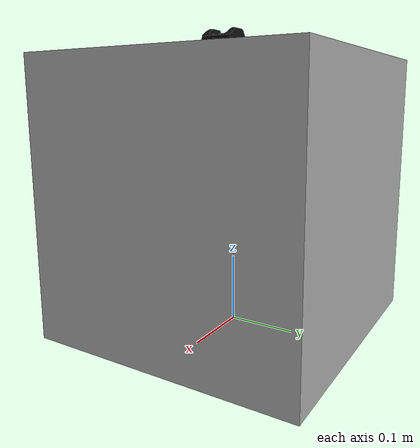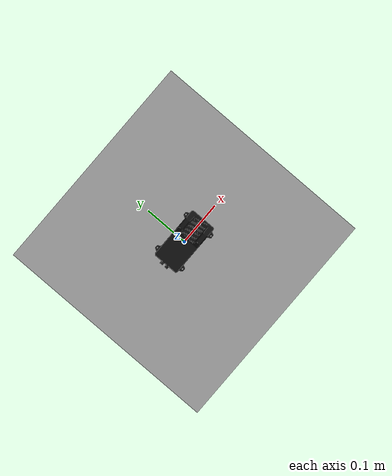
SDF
<?xml version="1.0" ?>
<!-- |    This document was autogenerated by xmacro4sdf from model.sdf.xmacro          | -->
<!-- |    EDITING THIS FILE BY HAND IS NOT RECOMMENDED                                 | -->
<sdf version="1.7">
	<!--include defination-->
	<!--rm22_video_transmitter_module example-->
	<model name="rm22_video_transmitter_module">
		<pose>0 0 0.2 0 0 0</pose>
		<link name="base_link">
			<inertial>
				<mass>0.4</mass>
				<inertia>
					<ixx>0.01066666666666667</ixx>
					<ixy>0</ixy>
					<ixz>0</ixz>
					<iyy>0.01066666666666667</iyy>
					<iyz>0</iyz>
					<izz>0.01066666666666667</izz>
				</inertia>
			</inertial>
			<visual name="visual">
				<geometry>
					<box>
						<size>0.4 0.4 0.4</size>
					</box>
				</geometry>
				<material>
					<ambient>0.6 0.6 0.6 1</ambient>
					<diffuse>0.6 0.6 0.6 1</diffuse>
				</material>
			</visual>
			<collision name="collision">
				<geometry>
					<box>
						<size>0.4 0.4 0.4</size>
					</box>
				</geometry>
			</collision>
		</link>
		<joint name="video_transmitter_joint" type="fixed">
			<pose relative_to="base_link">0 0 0.2 0 0 0</pose>
			<parent>base_link</parent>
			<child>video_transmitter</child>
		</joint>
		<link name="video_transmitter">
			<pose relative_to="video_transmitter_joint">0 0 0 0 0 0</pose>
			<inertial>
				<pose>0 0 0.014 0 0 0</pose>
				<mass>0.1</mass>
				<inertia>
					<ixx>2.7366666666666673e-05</ixx>
					<ixy>0</ixy>
					<ixz>0</ixz>
					<iyy>8.986666666666668e-05</iyy>
					<iyz>0</iyz>
					<izz>0.00010416666666666669</izz>
				</inertia>
			</inertial>
			<visual name="visual">
				<geometry>
					<mesh>
						<uri>model://rm21_video_transmitter_module/meshes/video_transmitter.stl</uri>
					</mesh>
				</geometry>
				<material>
					<ambient>0.1 0.1 0.1</ambient>
					<diffuse>0.05 0.05 0.05</diffuse>
					<specular>0.6 0.6 0.6</specular>
				</material>
			</visual>
			<visual name="glass_visual">
				<geometry>
					<mesh>
						<uri>model://rm21_video_transmitter_module/meshes/video_transmitter_glass.stl</uri>
					</mesh>
				</geometry>
				<material>
					<diffuse>1.0 1.0 1.0 0.4</diffuse>
					<specular>1.0 1.0 1.0 0.4</specular>
					<ambient>1.0 1.0 1.0 0.4</ambient>
				</material>
			</visual>
			<collision name="collision">
				<pose>0 0 0.014 0 0 0</pose>
				<geometry>
					<box>
						<size>0.1 0.05 0.028</size>
					</box>
				</geometry>
			</collision>
			<sensor name="video_transmitter" type="camera">
				<pose>0.03 0 0.014 0 0 0</pose>
				<always_on>1</always_on>
				<update_rate>30.0</update_rate>
				<camera>
					<!--100 degree-->
					<horizontal_fov>1.745</horizontal_fov>
					<image>
						<width>1280</width>
						<height>720</height>
					</image>
					<clip>
						<near>0.1</near>
						<far>100</far>
					</clip>
				</camera>
			</sensor>
		</link>
	</model>
</sdf>
